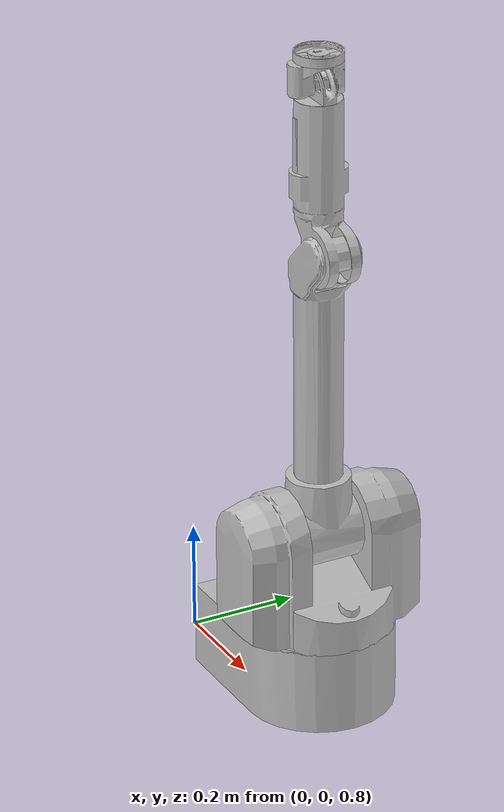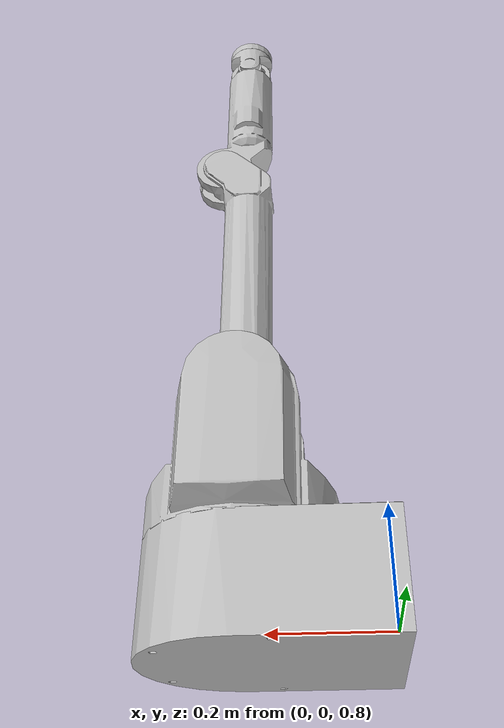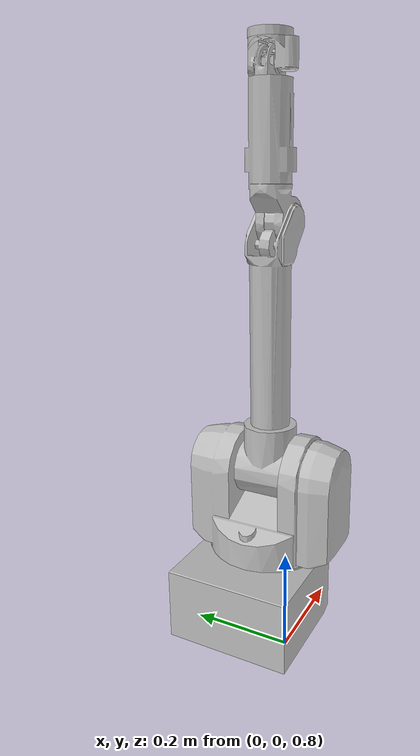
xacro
<?xml version="1.0"?>
<robot name="iri_wam" xmlns:xacro="http://www.ros.org/wiki/xacro" >

  <!-- Set up definitions of parts of the robot body -->
  <xacro:include filename="$(find iri_wam_description)/xacro/iri_wam_base.urdf.xacro" />
  <xacro:include filename="$(find iri_wam_description)/xacro/iri_wam_1.urdf.xacro" />
  <xacro:include filename="$(find iri_wam_description)/xacro/iri_wam_2.urdf.xacro" />
  <xacro:include filename="$(find iri_wam_description)/xacro/iri_wam_3.urdf.xacro" />
  <xacro:include filename="$(find iri_wam_description)/xacro/iri_wam_4.urdf.xacro" />
  <xacro:include filename="$(find iri_wam_description)/xacro/iri_wam_5.urdf.xacro" />
  <xacro:include filename="$(find iri_wam_description)/xacro/iri_wam_6.urdf.xacro" />
  <xacro:include filename="$(find iri_wam_description)/xacro/iri_wam_7.urdf.xacro" />
  <xacro:include filename="$(find iri_wam_description)/xacro/iri_wam_tcp.urdf.xacro" />
  <xacro:include filename="$(find cirp_wam_description)/xacro/gripper.urdf.xacro" />

  <xacro:property name="robot_name" value="iri_wam"/>
  <xacro:property name="JointInterface" value="hardware_interface/EffortJointInterface"/>

  <!-- This will attach the robot to the world link -->
  <link name="world"/>
  <joint name="fixed" type="fixed">
    <parent link="world"/>
    <child  link="${robot_name}_link_footprint"/>
    <origin xyz="0 0 0.72" rpy="0 0 0" />
  </joint>

  <xacro:wambase prefix="${robot_name}"/>
  <xacro:wam1    prefix="${robot_name}" parent="${robot_name}_link_base" controller="${JointInterface}"/>
  <xacro:wam2    prefix="${robot_name}" parent="${robot_name}_link_1" controller="${JointInterface}"/>
  <xacro:wam3    prefix="${robot_name}" parent="${robot_name}_link_2" controller="${JointInterface}"/>
  <xacro:wam4    prefix="${robot_name}" parent="${robot_name}_link_3" controller="${JointInterface}"/>
  <xacro:wam5    prefix="${robot_name}" parent="${robot_name}_link_4" controller="${JointInterface}"/>
  <xacro:wam6    prefix="${robot_name}" parent="${robot_name}_link_5" controller="${JointInterface}"/>
  <xacro:wam7    prefix="${robot_name}" parent="${robot_name}_link_6" controller="${JointInterface}"/>
  <xacro:wamtcp  prefix="${robot_name}" parent="${robot_name}_link_7"/>
  <xacro:gripper prefix="${robot_name}" parent="${robot_name}_link_tcp"/>

  <!-- Not used but exposed here for educational purposes -->

  <!-- ros_control plugin -->
  <gazebo>
    <plugin name="gazebo_ros_control" filename="libgazebo_ros_control.so">
      <robotNamespace>/${robot_name}</robotNamespace>
      <eStopTopic>e_stop</eStopTopic>
    </plugin>
  </gazebo>

</robot>

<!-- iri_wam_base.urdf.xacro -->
<robot xmlns:xacro="http://www.ros.org/wiki/xacro">

  <xacro:property name="M_PI" value="3.1415926535897931" />

  <xacro:property name="base_mass" value="20"/>
  <xacro:property name="base_cg_x" value="0.0"/>
  <xacro:property name="base_cg_y" value="0.0"/>
  <xacro:property name="base_cg_z" value="0.0"/>

  <xacro:macro name="wambase" params="prefix">
    <link name="${prefix}_link_base">
        <inertial>
            <mass value="${base_mass}" />
            <origin xyz="${base_cg_x} ${base_cg_y} ${base_cg_z}" />
            <inertia ixx="0.5" ixy="0.0" ixz="0.0"
                     iyy="0.5" iyz="0.0"
                     izz="0.5" />
        </inertial>

        <visual>
            <origin xyz="0 0 0" rpy="0 0 0" />
            <geometry>
                <mesh filename="package://iri_wam_description/mesh/wambase.stl" scale="1.0 1.0 1.0" />
            </geometry>
            <material name="Grey" >
                <color rgba="0.75 0.75 0.75 1.0"/>
            </material>
        </visual>

        <collision>
            <origin xyz="0.0 0.0 0.0" rpy="0 0 0"/>
            <geometry>
                <mesh filename="package://iri_wam_description/mesh/wambase_collision.stl" scale="1.0 1.0 1.0" />
            </geometry>
            <contact_coefficients kd="1.0" kp="1000.0" mu="0"/>
        </collision>
    </link>

    <link name="${prefix}_link_footprint"/>

    <joint name="${prefix}_joint_footprint" type="fixed">
        <origin xyz="0.22 0.14 0.346" rpy="0 0 0" />
        <child link="${prefix}_link_base"/>
        <parent link="${prefix}_link_footprint"/>
    </joint>

    <gazebo reference="${prefix}_link_base">
        <selfCollide>true</selfCollide>
        <material>Gazebo/Grey</material>
    </gazebo>

  </xacro:macro>

</robot>

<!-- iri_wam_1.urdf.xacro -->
<robot xmlns:xacro="http://www.ros.org/wiki/xacro">

  <xacro:property name="M_PI" value="3.1415926535897931" />

  <xacro:macro name="wam1" params="prefix parent">

    <link name="${prefix}_link_1">
        <inertial>
            <mass value="8.3936" />
            <origin xyz="0.0 0.0 0.0" rpy="0 0 0" />
            <inertia ixx="0.5" ixy="0.0" ixz="0.0"
                     iyy="0.5" iyz="0.0"
                     izz="0.5" />
        </inertial>
        <visual>
            <origin xyz="0.0 0.0 0.0" rpy="0 0 0" />
            <geometry name="${prefix}_link_1_visual">
                <mesh filename="package://iri_wam_description/mesh/wam1.stl" scale="1.0 1.0 1.0" />
            </geometry>
            <material name="Grey" >
                <color rgba="0.75 0.75 0.75 1.0"/>
            </material>
        </visual>
        <collision>
            <origin xyz="0.0 0.0 0.0" rpy="0 0 0"/>
            <geometry name="${prefix}_link_1_collision">
                <mesh filename="package://iri_wam_description/mesh/wam1_collision.stl" scale="1.0 1.0 1.0" />
            </geometry>
            <contact_coefficients kd="1.0" kp="1000.0" mu="0"/>
        </collision>
    </link>

    <gazebo reference="${prefix}_link_1">
        <material>Gazebo/Grey</material>
        <selfCollide>true</selfCollide>
    </gazebo>

    <joint name="${prefix}_joint_1" type="revolute">
        <parent link="${parent}"/>
        <child link="${prefix}_link_1"/>
        <origin xyz="0.0 0.0 0.0" rpy="0 0 0" />
        <axis xyz="0 0 1" />
        <limit lower="-2.6" upper="2.6" effort="75" velocity="2.0"/>
        <dynamics damping="100"/>
    </joint>

    <transmission name="tran_1">
      <type>transmission_interface/SimpleTransmission</type>
      <joint name="${prefix}_joint_1">
       <hardwareInterface>EffortJointInterface</hardwareInterface>
      </joint>
      <actuator name="motor_1">
        <hardwareInterface>EffortJointInterface</hardwareInterface>
      	<mechanicalReduction>50</mechanicalReduction>
        <motorTorqueConstant>1</motorTorqueConstant>
      </actuator>
    </transmission>

  </xacro:macro>

</robot>

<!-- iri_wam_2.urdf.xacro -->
<robot xmlns:xacro="http://www.ros.org/wiki/xacro">

  <xacro:property name="M_PI" value="3.1415926535897931" />

  <xacro:macro name="wam2" params="prefix parent">

    <link name="${prefix}_link_2">
        <inertial>
            <mass value="4.8487" />
            <origin xyz="0 0 0" rpy="0 0 0" />
            <inertia ixx="0.1" ixy="0.0" ixz="0.0"
                     iyy="0.1" iyz="0.0"
                     izz="0.1" />
        </inertial>
        <visual>
            <origin xyz="0.0 0.0 0.0" rpy="0 0 0" />
            <geometry name="${prefix}_link_2_visual">
                <mesh filename="package://iri_wam_description/mesh/wam2.stl" scale="1.0 1.0 1.0" />
            </geometry>
            <material name="Grey" >
                <color rgba="0.75 0.75 0.75 1.0"/>
            </material>
        </visual>
        <collision>
            <origin xyz="0.0 0.0 0.0" rpy="0 0 0"/>
            <geometry name="${prefix}_link_2_collision">
                <mesh filename="package://iri_wam_description/mesh/wam2_collision.stl" scale="1.0 1.0 1.0" />
            </geometry>
            <contact_coefficients kd="1.0" kp="1000.0" mu="0"/>
        </collision>
    </link>

    <gazebo reference="${prefix}_link_2">
        <material>Gazebo/Grey</material>
        <selfCollide>true</selfCollide>
    </gazebo>

    <joint name="${prefix}_joint_2" type="revolute">
        <parent link="${parent}"/>
        <child link="${prefix}_link_2"/>
        <origin xyz="0.0 0.0 0.0" rpy="0 0 0" />
        <axis xyz="0 1 0" />
        <limit lower="-2.0" upper="2.0" effort="75" velocity="2.0"/>
        <dynamics damping="100"/>
    </joint>

    <transmission name="tran_2">
      <type>transmission_interface/SimpleTransmission</type>
      <joint name="${prefix}_joint_2">
      <hardwareInterface>EffortJointInterface</hardwareInterface>
      </joint>
      <actuator name="motor_2">
        <hardwareInterface>EffortJointInterface</hardwareInterface>
      	<mechanicalReduction>50</mechanicalReduction>
        <motorTorqueConstant>1</motorTorqueConstant>
      </actuator>
    </transmission>

  </xacro:macro>

</robot>

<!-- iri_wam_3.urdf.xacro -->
<robot xmlns:xacro="http://www.ros.org/wiki/xacro">

  <xacro:property name="M_PI" value="3.1415926535897931" />

  <xacro:macro name="wam3" params="prefix parent">

    <link name="${prefix}_link_3">
        <inertial>
            <mass value="1.7251" />
            <origin xyz="0 0 0.225" rpy="0 0 0" />
            <inertia ixx="0.1" ixy="0.0" ixz="0.0"
                     iyy="0.1" iyz="0.0"
                     izz="0.1" />
        </inertial>
        <visual>
            <origin xyz="0.0 0.0 0.0" rpy="0 0 0" />
            <geometry name="${prefix}_link_3_visual">
                <mesh filename="package://iri_wam_description/mesh/wam3.stl" scale="1.0 1.0 1.0" />
            </geometry>
            <material name="Grey" >
                <color rgba="0.75 0.75 0.75 1.0"/>
            </material>
        </visual>
        <collision>
            <origin xyz="0.0 0.0 0.0" rpy="0 0 0"/>
            <geometry name="${prefix}_link_3_collision">
                <mesh filename="package://iri_wam_description/mesh/wam3_collision.stl" scale="1.0 1.0 1.0" />
            </geometry>
            <contact_coefficients kd="1.0" kp="1000.0" mu="0"/>
        </collision>
    </link>

    <gazebo reference="${prefix}_link_3">
        <material>Gazebo/Grey</material>
        <selfCollide>true</selfCollide>
    </gazebo>

    <joint name="${prefix}_joint_3" type="revolute">
        <parent link="${parent}"/>
        <child link="${prefix}_link_3"/>
        <origin xyz="0.0 0.0 0.0" rpy="0 0 0" />
        <axis xyz="0 0 1" />
        <limit lower="-2.8" upper="2.8" effort="75" velocity="2.0"/>
        <dynamics damping="100"/>
    </joint>

    <transmission name="tran_3">
      <type>transmission_interface/SimpleTransmission</type>
      <joint name="${prefix}_joint_3">
        <hardwareInterface>EffortJointInterface</hardwareInterface>
      </joint>
      <actuator name="motor_3">
        <hardwareInterface>EffortJointInterface</hardwareInterface>
      	<mechanicalReduction>50</mechanicalReduction>
        <motorTorqueConstant>1</motorTorqueConstant>
      </actuator>
    </transmission>

  </xacro:macro>

</robot>

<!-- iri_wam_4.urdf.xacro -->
<robot xmlns:xacro="http://www.ros.org/wiki/xacro">

  <xacro:property name="M_PI" value="3.1415926535897931" />

  <xacro:macro name="wam4" params="prefix parent">

    <link name="${prefix}_link_4">
        <inertial>
            <mass value="2.0824" />
            <origin xyz="-0.045 -0.15 0" rpy="0 0 0" />
            <inertia ixx="0.2" ixy="0.0" ixz="0.0"
                     iyy="0.2" iyz="0.0"
                     izz="0.2" />
        </inertial>
        <visual>
            <origin xyz="0.0 0.0 0.0" rpy="0 0 0" />
            <geometry name="${prefix}_link_4_visual">
                <mesh filename="package://iri_wam_description/mesh/wam4.stl" scale="1.0 1.0 1.0" />
            </geometry>
            <material name="Grey" >
                <color rgba="0.75 0.75 0.75 1.0"/>
            </material>
        </visual>
        <collision>
            <origin xyz="0.0 0.0 0.0" rpy="0 0 0"/>
            <geometry name="${prefix}_link_4_collision">
                <mesh filename="package://iri_wam_description/mesh/wam4_collision.stl" scale="1.0 1.0 1.0" />
            </geometry>
            <contact_coefficients kd="1.0" kp="1000.0" mu="0"/>
        </collision>
    </link>

    <gazebo reference="${prefix}_link_4">
        <material>Gazebo/Grey</material>
        <selfCollide>true</selfCollide>
    </gazebo>

    <joint name="${prefix}_joint_4" type="revolute">
        <parent link="${parent}"/>
        <child link="${prefix}_link_4"/>
        <origin xyz="0.045 0.0 0.55" rpy="-${M_PI/2} 0 0" />
        <axis xyz="0 0 1" />
        <limit lower="-0.9" upper="3.1" effort="75" velocity="2.0"/>
        <dynamics damping="100"/>
    </joint>

    <transmission name="tran_4">
      <type>transmission_interface/SimpleTransmission</type>
      <joint name="${prefix}_joint_4">
        <hardwareInterface>EffortJointInterface</hardwareInterface>

      </joint>
      <actuator name="motor_4">
        <hardwareInterface>EffortJointInterface</hardwareInterface>
      	<mechanicalReduction>50</mechanicalReduction>
        <motorTorqueConstant>1</motorTorqueConstant>
      </actuator>
    </transmission>

  </xacro:macro>

</robot>

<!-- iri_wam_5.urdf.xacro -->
<robot xmlns:xacro="http://www.ros.org/wiki/xacro">

  <xacro:property name="M_PI" value="3.1415926535897931" />

  <xacro:macro name="wam5" params="prefix parent">

    <link name="${prefix}_link_5">
        <inertial>
            <mass value="0.3067" />
            <origin xyz="0 0 0" rpy="0 0 0" />
            <inertia ixx="0.1" ixy="0.0" ixz="0.0"
                     iyy="0.1" iyz="0.0"
                     izz="0.1" />
        </inertial>
        <visual>
            <origin xyz="0.0 0.0 0.0" rpy="0 0 0" />
            <geometry name="${prefix}_link_5_visual">
                <mesh filename="package://iri_wam_description/mesh/wam5.stl" scale="1.0 1.0 1.0" />
            </geometry>
            <material name="Grey" >
                <color rgba="0.75 0.75 0.75 1.0"/>
            </material>
        </visual>
        <collision>
            <origin xyz="0.0 0.0 0.0" rpy="0 0 0"/>
            <geometry name="${prefix}_link_5_collision">
                <mesh filename="package://iri_wam_description/mesh/wam5_collision.stl" scale="1.0 1.0 1.0" />
            </geometry>
            <contact_coefficients kd="1.0" kp="1000.0" mu="0"/>
        </collision>
    </link>

    <gazebo reference="${prefix}_link_5">
        <material>Gazebo/Grey</material>
        <selfCollide>true</selfCollide>
    </gazebo>

    <joint name="${prefix}_joint_5" type="revolute">
        <parent link="${parent}"/>
        <child link="${prefix}_link_5"/>
        <origin xyz="-0.045 -0.3 0.0" rpy="${M_PI/2} 0 0" />
        <axis xyz="0 0 1" />
        <limit lower="-4.76" upper="1.24" effort="75" velocity="2.0"/>
        <dynamics damping="100"/>
    </joint>

    <transmission name="tran_5">
      <type>transmission_interface/SimpleTransmission</type>
      <joint name="${prefix}_joint_5">
        <hardwareInterface>EffortJointInterface</hardwareInterface>
</joint>
      <actuator name="motor_5">
        <hardwareInterface>EffortJointInterface</hardwareInterface>
      	<mechanicalReduction>50</mechanicalReduction>
        <motorTorqueConstant>1</motorTorqueConstant>
      </actuator>
    </transmission>

  </xacro:macro>

</robot>

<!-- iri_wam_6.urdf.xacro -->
<robot xmlns:xacro="http://www.ros.org/wiki/xacro">

  <xacro:property name="M_PI" value="3.1415926535897931" />

  <xacro:macro name="wam6" params="prefix parent">

    <link name="${prefix}_link_6">
        <inertial>
            <mass value="0.4278" />
            <origin xyz="0 0 0" rpy="0 0 0" />
            <inertia ixx="0.1" ixy="0.0" ixz="0.0"
                     iyy="0.1" iyz="0.0"
                     izz="0.1" />
        </inertial>
        <visual>
            <origin xyz="0.0 0.0 0.0" rpy="0 0 0" />
            <geometry name="${prefix}_link_6_visual">
                <mesh filename="package://iri_wam_description/mesh/wam6.stl" scale="1.0 1.0 1.0" />
            </geometry>
            <material name="Grey" >
                <color rgba="0.75 0.75 0.75 1.0"/>
            </material>
        </visual>
        <collision>
            <origin xyz="0.0 0.0 0.0" rpy="0 0 0"/>
            <geometry name="${prefix}_link_6_collision">
                <mesh filename="package://iri_wam_description/mesh/wam6_collision.stl" scale="1.0 1.0 1.0" />
            </geometry>
            <contact_coefficients kd="1.0" kp="1000.0" mu="0"/>
        </collision>
    </link>

    <gazebo reference="${prefix}_link_6">
        <material>Gazebo/Grey</material>
        <selfCollide>true</selfCollide>
    </gazebo>

    <joint name="${prefix}_joint_6" type="revolute">
        <parent link="${parent}"/>
        <child link="${prefix}_link_6"/>
        <origin xyz="0.0 0.0 0.0" rpy="-${M_PI/2} 0 0" />
        <axis xyz="0 0 1" />
        <limit lower="-1.6" upper="1.6" effort="75" velocity="2.0"/>
        <dynamics damping="100"/>
    </joint>

    <transmission name="tran_6">
      <type>transmission_interface/SimpleTransmission</type>
      <joint name="${prefix}_joint_6">
        <hardwareInterface>EffortJointInterface</hardwareInterface>

</joint>
      <actuator name="motor_6">
        <hardwareInterface>EffortJointInterface</hardwareInterface>
      	<mechanicalReduction>50</mechanicalReduction>
        <motorTorqueConstant>1</motorTorqueConstant>
      </actuator>
    </transmission>

  </xacro:macro>

</robot>

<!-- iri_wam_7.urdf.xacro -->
<robot xmlns:xacro="http://www.ros.org/wiki/xacro">

  <xacro:property name="M_PI" value="3.1415926535897931" />

  <xacro:macro name="wam7" params="prefix parent">

    <link name="${prefix}_link_7">
        <inertial>
            <mass value="0.0557" />
            <origin xyz="0 0 0" rpy="0 0 0" />
            <inertia ixx="0.1" ixy="0.0" ixz="0.0"
                     iyy="0.1" iyz="0.0"
                     izz="0.1" />
        </inertial>
        <visual>
            <origin xyz="0.0 0.0 0.0" rpy="0 0 0" />
            <geometry name="${prefix}_link_7_visual">
                <mesh filename="package://iri_wam_description/mesh/wam7.stl" scale="1.0 1.0 1.0" />
            </geometry>
            <material name="Grey" >
                <color rgba="0.75 0.75 0.75 1.0"/>
            </material>
        </visual>
        <collision>
            <origin xyz="0.0 0.0 0.0" rpy="0 0 0"/>
            <geometry name="${prefix}_link_7_collision">
                <mesh filename="package://iri_wam_description/mesh/wam7_collision.stl" scale="1.0 1.0 1.0" />
            </geometry>
            <contact_coefficients kd="1.0" kp="1000.0" mu="0"/>
        </collision>
    </link>

    <gazebo reference="${prefix}_link_7">
        <material>Gazebo/Grey</material>
        <selfCollide>true</selfCollide>
    </gazebo>

    <joint name="${prefix}_joint_7" type="revolute">
        <parent link="${parent}"/>
        <child link="${prefix}_link_7"/>
        <origin xyz="0.0 0.0 0.0" rpy="${M_PI/2} 0 0" />
        <axis xyz="0 0 1" />
        <limit lower="-3.0" upper="3.0" effort="75" velocity="2.0"/>
        <dynamics damping="100"/>
    </joint>

    <transmission name="tran_7">
      <type>transmission_interface/SimpleTransmission</type>
      <joint name="${prefix}_joint_7">
        <hardwareInterface>EffortJointInterface</hardwareInterface>

</joint>
      <actuator name="motor_7">
        <hardwareInterface>EffortJointInterface</hardwareInterface>
      	<mechanicalReduction>50</mechanicalReduction>
        <motorTorqueConstant>1</motorTorqueConstant>
      </actuator>
    </transmission>

  </xacro:macro>

</robot>

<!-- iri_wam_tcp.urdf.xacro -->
<robot xmlns:xacro="http://www.ros.org/wiki/xacro">

  <xacro:property name="M_PI" value="3.1415926535897931" />

  <xacro:macro name="wamtcp" params="prefix parent">

    <link name="${prefix}_link_tcp" />

    <joint name="${prefix}_joint_tcp" type="fixed" >
      <parent link="${parent}" />
      <child link="${prefix}_link_tcp" />
      <origin xyz="0.0 0.0 0.06" rpy="0 0 0" />
    </joint>

  </xacro:macro>

</robot>

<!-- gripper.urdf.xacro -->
<robot xmlns:xacro="http://www.ros.org/wiki/xacro">

  <xacro:property name="M_PI" value="3.1415926535897931" />

  <xacro:macro name="gripper" params="prefix parent">

    <link name="${prefix}_gripper_tcp" />

    <joint name="${prefix}_gripper_tcp_j" type="fixed" >
      <parent link="${parent}" />
      <child link="${prefix}_gripper_tcp" />
      <origin xyz="0.0 0.0 0.115" rpy="0 0 0" />
    </joint>

    <gazebo>
      <plugin filename="libgz_gripper_plugin.so" name="gripper_plugin">
        <gripper_link>${prefix}_link_7</gripper_link>
        <gripper_tf>${prefix}_gripper_tcp</gripper_tf>
      </plugin>
    </gazebo>

    <gazebo reference="${prefix}_gripper">
      <material>Gazebo/Grey</material>
    </gazebo>

  </xacro:macro>

</robot>
